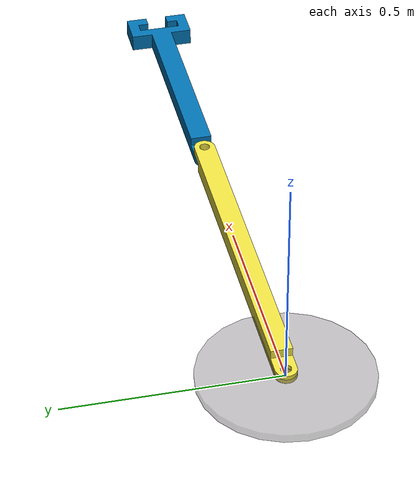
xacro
<?xml version="1.0"?>

<robot xmlns:xacro="http://www.ros.org/wiki/xacro" name="planar_4dof">

<xacro:property name="d1" value="0.5" />
<xacro:property name="d2" value="0.8" />
<xacro:property name="d3" value="1.0" />
<xacro:property name="de" value="0.5" />

<xacro:property name="file_link1" value="package://constrained_manipulation/urdf/meshes/visual/link1_v3.dae" />
<xacro:property name="file_link2" value="package://constrained_manipulation/urdf/meshes/visual/link2_v3.dae" />
<xacro:property name="file_link3" value="package://constrained_manipulation/urdf/meshes/visual/link3_v3.dae" />
<xacro:property name="file_ee" value="package://constrained_manipulation/urdf/meshes/visual/ee_v3.dae" />

<material name="gray">
    <color rgba="0.42 0.4 0.42 0.4"/>
  </material>

<material name="darkgray">
    <color rgba="0.3 0.3 0.3 0.5"/>
  </material>

  <material name="white">
    <color rgba="1 1 1 0.0"/>
  </material>

<xacro:macro name="cylinder_inertial" params="radius length mass *origin">
  <inertial>
    <mass value="${mass}" />
    <insert_block name="origin" />
    <inertia ixx="${0.0833333 * mass * (3 * radius * radius + length * length)}" ixy="0.0" ixz="0.0"
iyy="${0.0833333 * mass * (3 * radius * radius + length * length)}" iyz="0.0"
      izz="${0.5 * mass * radius * radius}" />
  </inertial>
</xacro:macro>

<xacro:macro name="revolute_joint" params="joint_name parent child pos">
  <joint name="${joint_name}" type="revolute">
    <parent link="${parent}"/>
    <child link="${child}"/>
    <origin xyz="${pos}" rpy="0 0 0"/>
    <axis xyz="0 0 1"/>
    <limit lower="-3.14159" upper="3.14159" effort="10" velocity="0.5"/>
  </joint>
</xacro:macro>

<xacro:macro name="prismatic_joint" params="joint_name parent child pos axis">
  <joint name="${joint_name}" type="prismatic">
    <parent link="${parent}"/>
    <child link="${child}"/>
    <origin xyz="${pos}" rpy="0 0 0"/>
    <axis xyz="${axis}"/>
    <limit lower="-3.0" upper="3.0" effort="10" velocity="0.5"/>
  </joint>
</xacro:macro>

<xacro:macro name="simple_link" params="title file radius length mass" >
  <link name="${title}">
    <visual>
    <geometry>
      <mesh filename="${file}"/>
    </geometry>
  </visual>
  <material name="grey">
    <color rgba="0.7 0.7 0.7 1.0"/>
  </material>
  <collision>
    <geometry>
      <mesh filename="${file}"/>
    </geometry>
  </collision>
  <xacro:cylinder_inertial radius="${radius}" length="${length}" mass="${mass}">
    <origin xyz="0.0 0.0 0.0" rpy="0 0 0" />
  </xacro:cylinder_inertial>
  </link>
</xacro:macro>

<xacro:macro name="slider_link" params="title file radius length mass" >
  <link name="${title}">
    <visual>
    <geometry>
      <box size="0.01 0.01 0.0"/>
    </geometry>
  <material name="grey">
    <color rgba="0.7 0.7 0.7 1.0"/>
  </material>
  </visual>
  <collision>
    <geometry>
      <box size="0.1 0.1 0.0"/>
    </geometry>
  </collision>
  <xacro:cylinder_inertial radius="${radius}" length="${length}" mass="${mass}">
    <origin xyz="0.0 0.0 0.0" rpy="0 0 0" />
  </xacro:cylinder_inertial>
  </link>

</xacro:macro>

<xacro:macro name="slider_link2" params="title file radius length mass" >
  <link name="${title}">
    <visual>
    <geometry>
      <cylinder length="0.02" radius="0.2"/>
    </geometry>
<material name="gray"/>
  </visual>
  <collision>
    <geometry>
      <box size="0.1 0.1 0.0"/>
    </geometry>
  </collision>
  <xacro:cylinder_inertial radius="${radius}" length="${length}" mass="${mass}">
    <origin xyz="0.0 0.0 0.0" rpy="0 0 0" />
  </xacro:cylinder_inertial>
  </link>
</xacro:macro>
<link name="world"/>

<xacro:slider_link title="L0" file="${file_link1}" radius="0.2" mass="1" length="${d3}"/>
<xacro:prismatic_joint joint_name="q0" parent="world" child="L0" pos="0.0 0.0 0.0" axis="0.0 1.0 0.0"/>

<xacro:slider_link2 title="L1" file="${file_link1}" radius="0.2" mass="1" length="${d3}"/>
<xacro:prismatic_joint joint_name="q1" parent="L0" child="L1" pos="0.0 0.0 0.0" axis="1.0 0.0 0.0"/>

<xacro:simple_link title="L2" file="${file_link2}" radius="0.2" mass="1" length="${d2}"/>
<xacro:revolute_joint joint_name="q2" parent="L1" child="L2" pos="0.0 0.0 0.0"/>

<xacro:simple_link title="EE" file="${file_ee}" radius="0.2" mass="1" length="${de}" />
<xacro:revolute_joint joint_name="q3" parent="L2" child="EE" pos="${d2} 0 0"/>

</robot>
